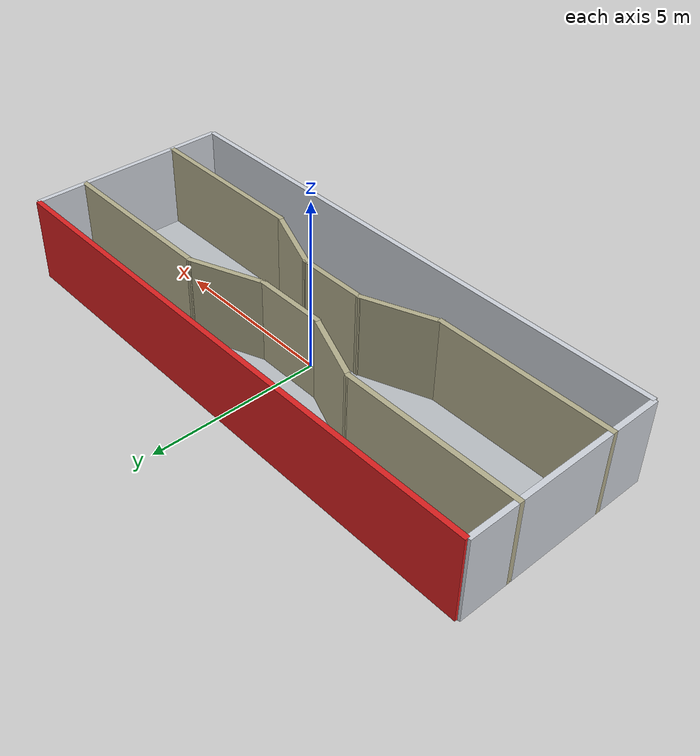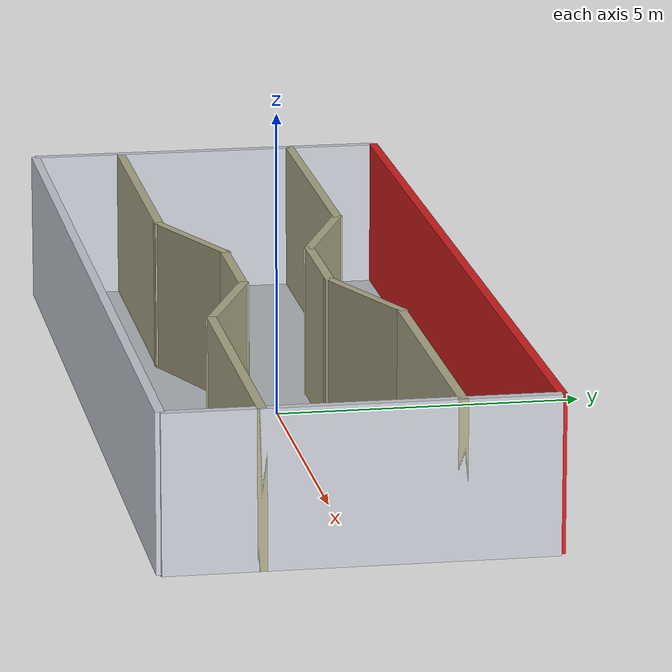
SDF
<sdf version="1.9">
 <world name="funnel_corridor">
  <physics name="1ms" type="ignored">
   <max_step_size>0.001</max_step_size>
   <real_time_factor>1.0</real_time_factor>
  </physics>
  <plugin filename="gz-sim-physics-system" name="gz::sim::systems::Physics"/>
  <plugin filename="gz-sim-scene-broadcaster-system" name="gz::sim::systems::SceneBroadcaster"/>
  <plugin filename="gz-sim-user-commands-system" name="gz::sim::systems::UserCommands"/>
  <plugin filename="gz-sim-sensors-system" name="gz::sim::systems::Sensors">
   <render_engine>ogre2</render_engine>
  </plugin>
  <plugin filename="gz-sim-imu-system" name="gz::sim::systems::Imu"/>
  <plugin filename="gz-sim-navsat-system" name="gz::sim::systems::NavSat"/>
  <spherical_coordinates>
   <latitude_deg>-35.363262</latitude_deg>
   <longitude_deg>149.165237</longitude_deg>
   <elevation>584.0</elevation>
   <heading_deg>0</heading_deg>
   <surface_model>EARTH_WGS84</surface_model>
  </spherical_coordinates>
  <light type="directional" name="main_light">
   <cast_shadows>false</cast_shadows>
   <pose>0 0 10 0 0 0</pose>
   <diffuse>1.0 1.0 1.0 1</diffuse>
   <specular>0.5 0.5 0.5 1</specular>
   <direction>0.1 0.1 -1</direction>
  </light>
  <model name="floor">
   <static>true</static>
   <link name="link">
    <collision name="c"><geometry><box><size>16.0 6.0 0.05</size></box></geometry></collision>
    <visual name="v">
     <geometry><box><size>16.0 6.0 0.05</size></box></geometry>
     <material>
      <ambient>0.72 0.74 0.76 1</ambient>
      <diffuse>0.72 0.74 0.76 1</diffuse>
      <specular>0.1 0.1 0.1 1</specular>
     </material>
    </visual>
   </link>
  </model>
  <model name="outer_south">
   <static>true</static>
   <pose>0.0000 -3.0000 1.250 0 0 0.00000</pose>
   <link name="link">
    <collision name="c"><geometry><box><size>16.0000 0.1500 2.500</size></box></geometry></collision>
    <visual name="v">
     <geometry><box><size>16.0000 0.1500 2.500</size></box></geometry>
     <material>
      <ambient>0.8 0.82 0.85 1</ambient>
      <diffuse>0.8 0.82 0.85 1</diffuse>
      <specular>0.1 0.1 0.1 1</specular>
     </material>
    </visual>
   </link>
  </model>
  <model name="outer_north">
   <static>true</static>
   <pose>0.0000 3.0000 1.250 0 0 0.00000</pose>
   <link name="link">
    <collision name="c"><geometry><box><size>16.0000 0.1500 2.500</size></box></geometry></collision>
    <visual name="v">
     <geometry><box><size>16.0000 0.1500 2.500</size></box></geometry>
     <material>
      <ambient>0.85 0.12 0.12 1</ambient>
      <diffuse>0.85 0.12 0.12 1</diffuse>
      <specular>0.1 0.1 0.1 1</specular>
     </material>
    </visual>
   </link>
  </model>
  <model name="outer_west">
   <static>true</static>
   <pose>-8.0000 0.0000 1.250 0 0 0.00000</pose>
   <link name="link">
    <collision name="c"><geometry><box><size>0.1500 6.0000 2.500</size></box></geometry></collision>
    <visual name="v">
     <geometry><box><size>0.1500 6.0000 2.500</size></box></geometry>
     <material>
      <ambient>0.8 0.82 0.85 1</ambient>
      <diffuse>0.8 0.82 0.85 1</diffuse>
      <specular>0.1 0.1 0.1 1</specular>
     </material>
    </visual>
   </link>
  </model>
  <model name="outer_east">
   <static>true</static>
   <pose>8.0000 0.0000 1.250 0 0 0.00000</pose>
   <link name="link">
    <collision name="c"><geometry><box><size>0.1500 6.0000 2.500</size></box></geometry></collision>
    <visual name="v">
     <geometry><box><size>0.1500 6.0000 2.500</size></box></geometry>
     <material>
      <ambient>0.8 0.82 0.85 1</ambient>
      <diffuse>0.8 0.82 0.85 1</diffuse>
      <specular>0.1 0.1 0.1 1</specular>
     </material>
    </visual>
   </link>
  </model>
  <model name="fn_n0">
   <static>true</static>
   <pose>-5.5000 1.5000 1.250 0 0 0.00000</pose>
   <link name="link">
    <collision name="c"><geometry><box><size>5.1500 0.1500 2.500</size></box></geometry></collision>
    <visual name="v">
     <geometry><box><size>5.1500 0.1500 2.500</size></box></geometry>
     <material>
      <ambient>0.7 0.68 0.55 1</ambient>
      <diffuse>0.7 0.68 0.55 1</diffuse>
      <specular>0.1 0.1 0.1 1</specular>
     </material>
    </visual>
   </link>
  </model>
  <model name="fn_n1">
   <static>true</static>
   <pose>-2.0000 1.1000 1.250 0 0 -0.38051</pose>
   <link name="link">
    <collision name="c"><geometry><box><size>2.3041 0.1500 2.500</size></box></geometry></collision>
    <visual name="v">
     <geometry><box><size>2.3041 0.1500 2.500</size></box></geometry>
     <material>
      <ambient>0.7 0.68 0.55 1</ambient>
      <diffuse>0.7 0.68 0.55 1</diffuse>
      <specular>0.1 0.1 0.1 1</specular>
     </material>
    </visual>
   </link>
  </model>
  <model name="fn_n2">
   <static>true</static>
   <pose>0.0000 0.7000 1.250 0 0 0.00000</pose>
   <link name="link">
    <collision name="c"><geometry><box><size>2.1500 0.1500 2.500</size></box></geometry></collision>
    <visual name="v">
     <geometry><box><size>2.1500 0.1500 2.500</size></box></geometry>
     <material>
      <ambient>0.7 0.68 0.55 1</ambient>
      <diffuse>0.7 0.68 0.55 1</diffuse>
      <specular>0.1 0.1 0.1 1</specular>
     </material>
    </visual>
   </link>
  </model>
  <model name="fn_n3">
   <static>true</static>
   <pose>2.0000 1.1000 1.250 0 0 0.38051</pose>
   <link name="link">
    <collision name="c"><geometry><box><size>2.3041 0.1500 2.500</size></box></geometry></collision>
    <visual name="v">
     <geometry><box><size>2.3041 0.1500 2.500</size></box></geometry>
     <material>
      <ambient>0.7 0.68 0.55 1</ambient>
      <diffuse>0.7 0.68 0.55 1</diffuse>
      <specular>0.1 0.1 0.1 1</specular>
     </material>
    </visual>
   </link>
  </model>
  <model name="fn_n4">
   <static>true</static>
   <pose>5.5000 1.5000 1.250 0 0 0.00000</pose>
   <link name="link">
    <collision name="c"><geometry><box><size>5.1500 0.1500 2.500</size></box></geometry></collision>
    <visual name="v">
     <geometry><box><size>5.1500 0.1500 2.500</size></box></geometry>
     <material>
      <ambient>0.7 0.68 0.55 1</ambient>
      <diffuse>0.7 0.68 0.55 1</diffuse>
      <specular>0.1 0.1 0.1 1</specular>
     </material>
    </visual>
   </link>
  </model>
  <model name="fn_s0">
   <static>true</static>
   <pose>-5.5000 -1.5000 1.250 0 0 0.00000</pose>
   <link name="link">
    <collision name="c"><geometry><box><size>5.1500 0.1500 2.500</size></box></geometry></collision>
    <visual name="v">
     <geometry><box><size>5.1500 0.1500 2.500</size></box></geometry>
     <material>
      <ambient>0.7 0.68 0.55 1</ambient>
      <diffuse>0.7 0.68 0.55 1</diffuse>
      <specular>0.1 0.1 0.1 1</specular>
     </material>
    </visual>
   </link>
  </model>
  <model name="fn_s1">
   <static>true</static>
   <pose>-2.0000 -1.1000 1.250 0 0 0.38051</pose>
   <link name="link">
    <collision name="c"><geometry><box><size>2.3041 0.1500 2.500</size></box></geometry></collision>
    <visual name="v">
     <geometry><box><size>2.3041 0.1500 2.500</size></box></geometry>
     <material>
      <ambient>0.7 0.68 0.55 1</ambient>
      <diffuse>0.7 0.68 0.55 1</diffuse>
      <specular>0.1 0.1 0.1 1</specular>
     </material>
    </visual>
   </link>
  </model>
  <model name="fn_s2">
   <static>true</static>
   <pose>0.0000 -0.7000 1.250 0 0 0.00000</pose>
   <link name="link">
    <collision name="c"><geometry><box><size>2.1500 0.1500 2.500</size></box></geometry></collision>
    <visual name="v">
     <geometry><box><size>2.1500 0.1500 2.500</size></box></geometry>
     <material>
      <ambient>0.7 0.68 0.55 1</ambient>
      <diffuse>0.7 0.68 0.55 1</diffuse>
      <specular>0.1 0.1 0.1 1</specular>
     </material>
    </visual>
   </link>
  </model>
  <model name="fn_s3">
   <static>true</static>
   <pose>2.0000 -1.1000 1.250 0 0 -0.38051</pose>
   <link name="link">
    <collision name="c"><geometry><box><size>2.3041 0.1500 2.500</size></box></geometry></collision>
    <visual name="v">
     <geometry><box><size>2.3041 0.1500 2.500</size></box></geometry>
     <material>
      <ambient>0.7 0.68 0.55 1</ambient>
      <diffuse>0.7 0.68 0.55 1</diffuse>
      <specular>0.1 0.1 0.1 1</specular>
     </material>
    </visual>
   </link>
  </model>
  <model name="fn_s4">
   <static>true</static>
   <pose>5.5000 -1.5000 1.250 0 0 0.00000</pose>
   <link name="link">
    <collision name="c"><geometry><box><size>5.1500 0.1500 2.500</size></box></geometry></collision>
    <visual name="v">
     <geometry><box><size>5.1500 0.1500 2.500</size></box></geometry>
     <material>
      <ambient>0.7 0.68 0.55 1</ambient>
      <diffuse>0.7 0.68 0.55 1</diffuse>
      <specular>0.1 0.1 0.1 1</specular>
     </material>
    </visual>
   </link>
  </model>
 </world>
</sdf>
